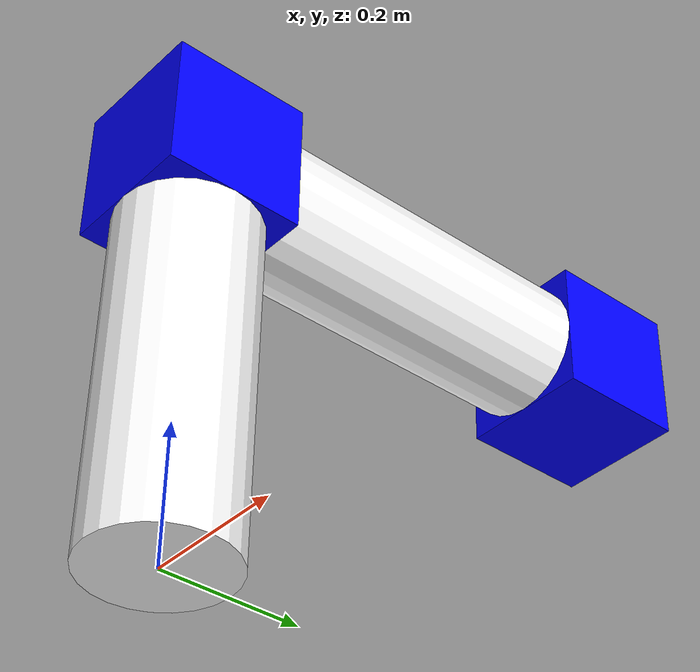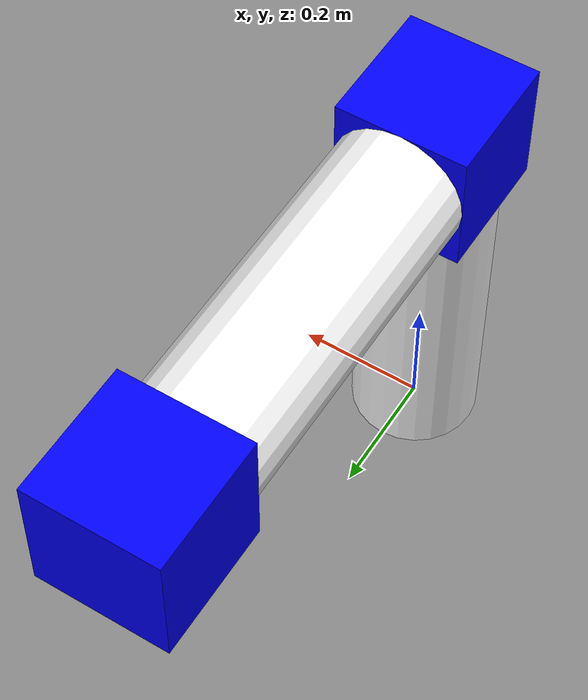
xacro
<?xml version="1.0"?>
<robot name="unibot" xmlns:xacro="http://www.ros.org/wiki/xacro">

  <!-- Includes -->
  <xacro:include filename="$(find xacro_tutorial)/model/xacro/links.xacro"/>
  <xacro:include filename="$(find xacro_tutorial)/model/xacro/union.xacro"/>

  <!-- Links -->
  <xacro:unit link="a1"/>
  <xacro:unit link="a2"/>
  <xacro:pin root_link="a1"/>

  <!-- Joints -->
  <xacro:union parent="a1" child="a2" y=" 1"/>

  <ros2_control name="GazeboSystem" type="system">
    <hardware>
      <plugin>gazebo_ros2_control/GazeboSystem</plugin>
    </hardware>
    <joint name="a1_joint">
      <command_interface name="effort">
        <param name="min">-100000</param>
        <param name="max">100000</param>
      </command_interface>
      <state_interface name="position"/>
      <state_interface name="velocity"/>
      <state_interface name="effort"/>
    </joint>
  </ros2_control>

  <gazebo>
    <plugin filename="libgazebo_ros2_control.so" name="gazebo_ros2_control">
      <parameters>$(find xacro_tutorial)/config/controllers.yaml</parameters>
    </plugin>
  </gazebo>

</robot>

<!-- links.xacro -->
<robot xmlns:xacro="http://www.ros.org/wiki/xacro">
    <xacro:include filename="$(find xacro_tutorial)/model/xacro/properties.xacro"/>

    <xacro:macro name="unit" params="link">

        <!-- Geometry Macros-->
        <xacro:macro name="tail_geom">
            <origin xyz="0.0 0.0 ${heigth/2}" rpy="0.0 0.0 0.0"/>
            <geometry>
                <cylinder radius="${width/2}" length="${heigth}"/>
            </geometry>
        </xacro:macro>

        <xacro:macro name="head_geom">
            <origin xyz="0.0 0.0 ${width/2}" rpy="0.0 0.0 0.0"/>
            <geometry>
                <box size="${width} ${width} ${width}"/>
            </geometry>
        </xacro:macro>

        <!-- Tail Link -->
        <link name="${link}_tail">
            <inertial>
                <origin xyz="0.0 0.0 ${heigth/2}" rpy="0.0 0.0 0.0"/>
                <mass value="1.0"/>
                <inertia ixx="1.0" ixy="0.0" ixz="0.0"
                        iyy="1.0" iyz="0.0"
                        izz="1.0"/>
            </inertial>
            <visual>
                <xacro:tail_geom/>
                <material name="White">
                    <color rgba="1.0 1.0 1.0 1.0"/>
                </material>
            </visual>
            <collision>
                <xacro:tail_geom/>
            </collision>
        </link>
        <gazebo reference="${link}_tail">
            <selfCollide>true</selfCollide>
            <material>Gazebo/White</material>
        </gazebo>

        <!-- Head Link -->
        <link name="${link}_head">
            <inertial>
                <origin xyz="0.0 0.0 0.0" rpy="0.0 0.0 0.0"/>
                <mass value="1.0"/>
                <inertia ixx="1.0" ixy="0.0" ixz="0.0"
                        iyy="1.0" iyz="0.0"
                        izz="1.0"/>
            </inertial>
            <visual>
                <xacro:head_geom/>
                <material name="Blue">
                    <color rgba="0.0 0.0 1.0 1.0"/>
                </material>
            </visual>
            <collision>
                <xacro:head_geom/>
            </collision>
        </link>
        <gazebo reference="${link}_head">
            <selfCollide>true</selfCollide>
            <material>Gazebo/Blue</material>
        </gazebo>

        <!-- Joint -->
        <joint name="${link}_joint" type="revolute">
            <origin xyz="0.0 0.0 ${heigth}" rpy="0.0 0.0 0.0"/>
            <parent link="${link}_tail"/>
            <child link="${link}_head"/>
            <axis xyz="0.0 0.0 1.0"/>
            <limit lower="${-2*pi}" upper="${2*pi}" effort="1000000" velocity="1000000"/>
        </joint>
    </xacro:macro>

    <!-- Base Link Macro -->
    <xacro:macro name="pin" params="root_link">
        <link name="world"/>
        <gazebo reference="world">
            <static>true</static>
        </gazebo>

        <joint name="pin" type="fixed">
            <parent link="world"/>
            <child link="${root_link}_tail"/>
        </joint>
    </xacro:macro>
</robot>

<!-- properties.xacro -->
<robot xmlns:xacro="http://www.ros.org/wiki/xacro">

    <xacro:property name="width" value="0.2"/>
    <xacro:property name="heigth" value="0.5"/>

</robot>

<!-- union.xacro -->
<robot xmlns:xacro="http://www.ros.org/wiki/xacro">
    <xacro:macro name="union" params="parent child x=0 y=0 z=0">

        <xacro:include filename="$(find ros2_control_tutorial)/model/xacro/properties.xacro"/>

        <joint name="${parent}_${child}_joint" type="fixed">
            <origin xyz="${x*width/2} ${y*width/2} ${z*width/2+width/2}"
                    rpy="${-y*pi/2} ${x*pi/2} 0"/>
            <parent link="${parent}_head"/>
            <child link="${child}_tail"/>
        </joint>
    </xacro:macro>
</robot>
